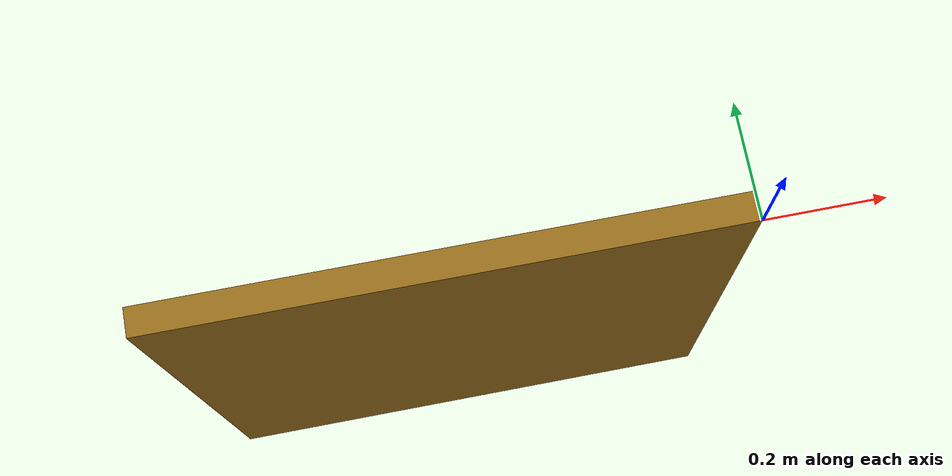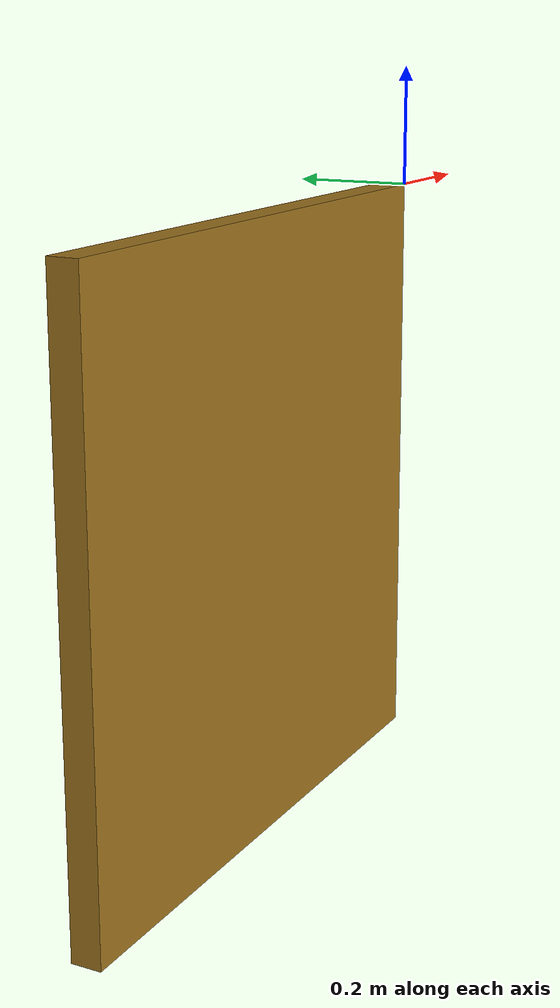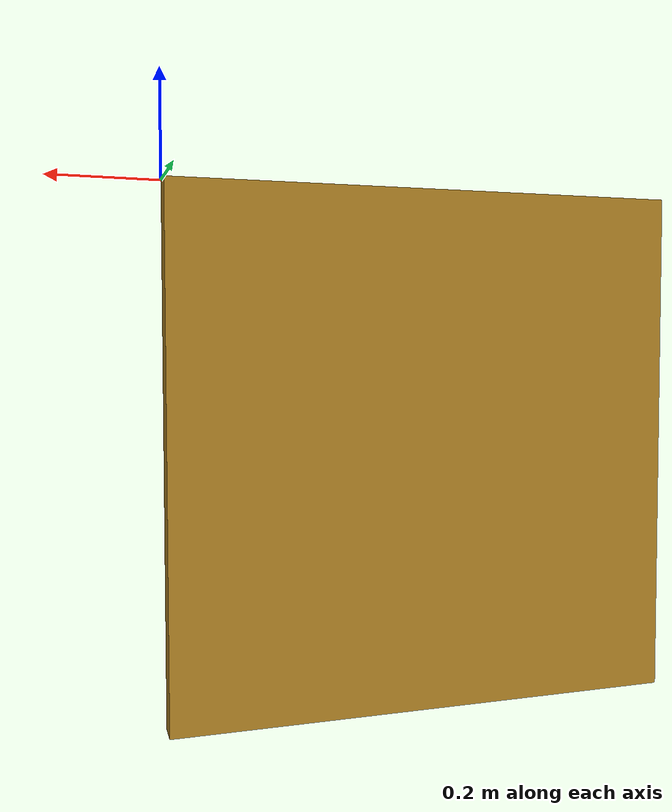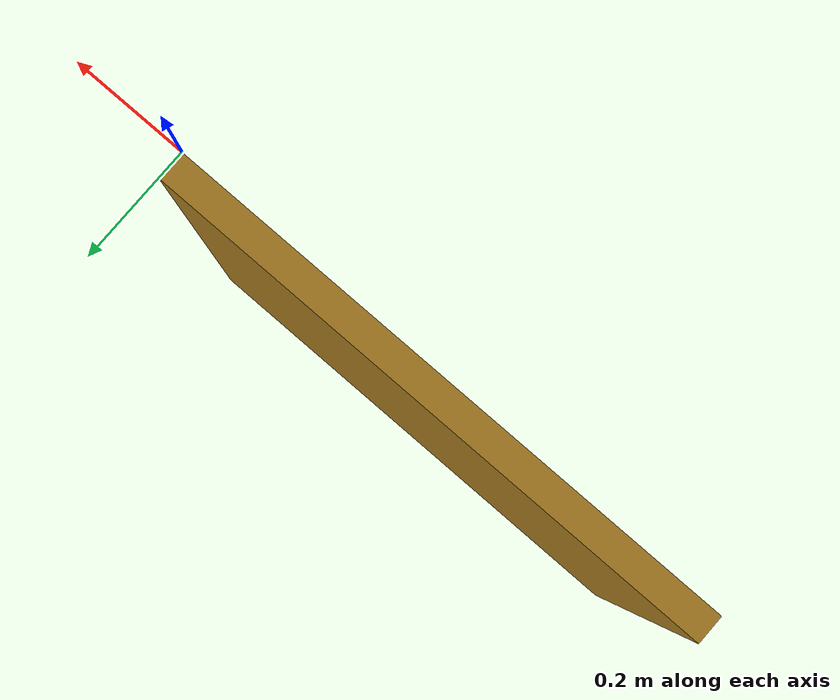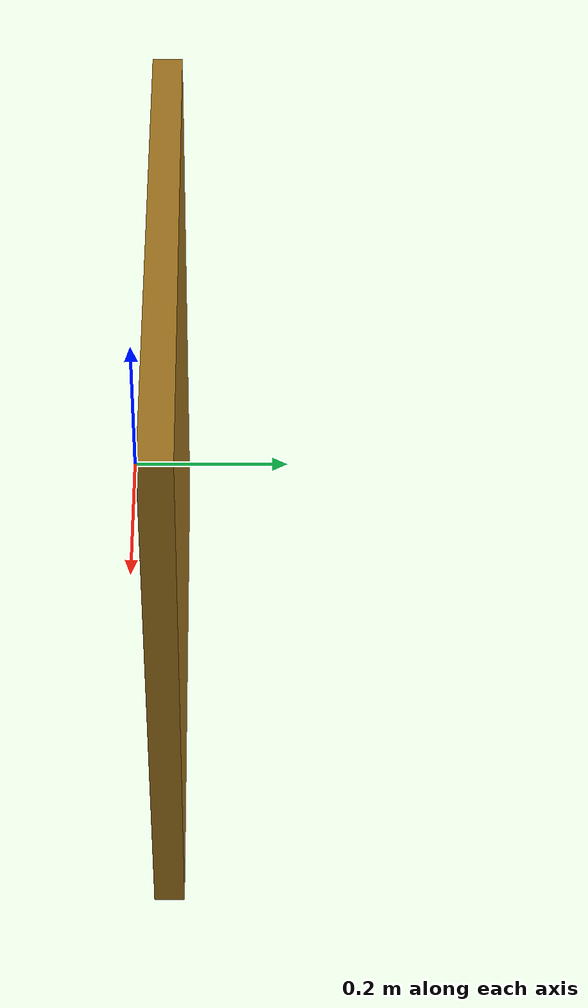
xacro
<?xml version="1.0"?>
<robot name="plate" xmlns:xacro="http://www.ros.org/wiki/xacro">

  <link name="plate_link">
    <visual>
      <geometry>
        <mesh filename="package://qm_description/meshes/sar/Plate.stl" scale="0.005 0.001 0.001"/>
      </geometry>
      <material name="brown">
          <color rgba="0.612 0.447 0.114 1"/>
      </material>
    </visual>
    <collision>
      <geometry>
        <mesh filename="package://qm_description/meshes/sar/Plate.stl" scale="0.005 0.001 0.001"/>
      </geometry>
    </collision>
    <inertial>
      <origin xyz="-0.5 0 -0.5" rpy="0 0 0"/>
      <mass value="10"/>
      <inertia ixx="0.8354" ixy="0.0" ixz="0.0" iyy="1.667" iyz="0.0" izz="0.8354"/>
    </inertial>
  </link>

  <gazebo reference="plate_link">
    <material>Gazebo/Wood</material>
  </gazebo>

</robot>
